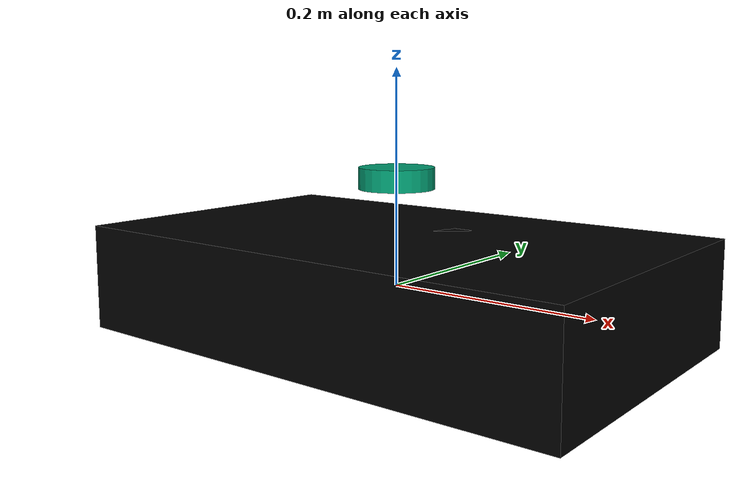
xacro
<?xml version="1.0"?>
<robot xmlns:xacro="http://www.ros.org/wiki/xacro" name="alphajor">

  <xacro:include filename="inertial_macros.xacro"/>
  <!--xacro:include filename="lidar.xacro"/-->
  <xacro:include filename="properties.xacro"/>

  <!-- Link for the odometry frame (world frame) -->
  <link name="odom">
    <visual>
      <origin xyz="0 0 0" rpy="0 0 0"/>
      <geometry>
        <box size="0.1 0.1 0.1"/>
      </geometry>
      <material name="invisible">
        <color rgba="0 0 0 0"/>
      </material>
    </visual>
  </link>

  <!-- Link for the base of the robot -->
  <link name="base_link">
    <visual>
      <origin xyz="0 0 0" rpy="0 0 0"/>
      <geometry>
        <box size="0.5 0.3 0.1"/>
      </geometry>
      <material name="invisible">
        <color rgba="0 0 0 0"/>
      </material>
    </visual>
  </link>

  <!-- Joint connecting odom to base_link (static for now) -->
  <joint name="odom_to_base_link" type="fixed">
    <parent link="odom"/>
    <child link="base_link"/>
    <origin xyz="0 0 0" rpy="0 0 0"/>
  </joint>

  <!-- lidar joint -->
    <joint name="laser_joint" type="fixed">
        <parent link="base_link"/>
        <child link="laser_frame"/>
        <origin xyz="0 0 0.1" rpy="0 0 3.1416"/>
    </joint>

    <link name="laser_frame">
        <visual>
            <geometry>
                <cylinder radius="0.035" length="0.02"/>
            </geometry>
        </visual>
        <collision>
            <geometry>
                <cylinder radius="0.035" length="0.02"/>
            </geometry>
        </collision>
        <xacro:inertial_cylinder mass="0.1" length="0.04" radius="0.05">
            <origin xyz="0 0 0" rpy="0 0 0"/>
        </xacro:inertial_cylinder>
    </link>

</robot>

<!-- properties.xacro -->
<robot xmlns:xacro="http://www.ros.org/wiki/xacro">
    <!-- Color Definitions -->
    <material name="white">
        <color rgba= "1 1 1 1"/>
    </material>

    <material name="orange">
        <color rgba= "1 0.3 0.1 1"/>
    </material>

    <material name="blue">
        <color rgba= "0.2 0.2 1 1"/>
    </material>

    <material name="black">
        <color rgba= "0 0 0 1"/>
    </material>

    <material name="red">
        <color rgba= "1 0 0 1"/>
    </material>

    <material name="invisible">
        <color rgba="0.0 0.0 0.0 0.0"/>
    </material>

</robot>
